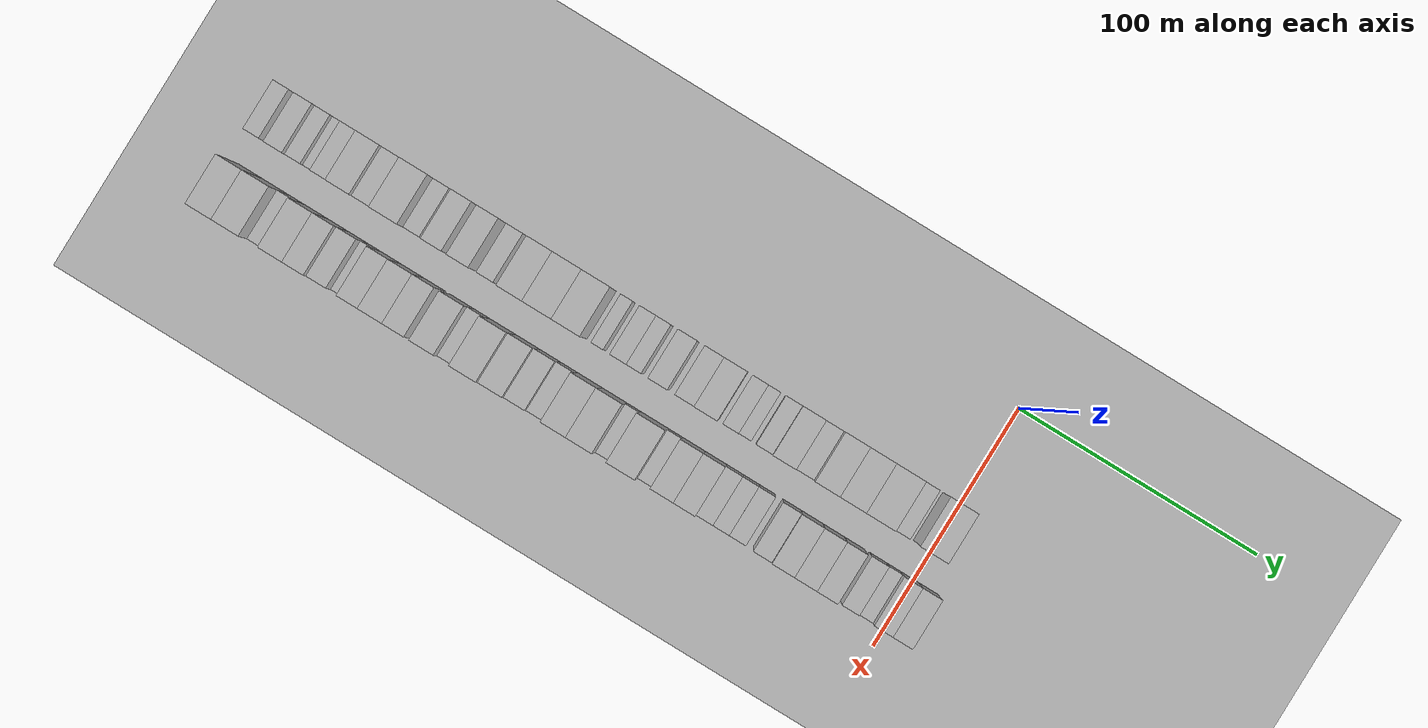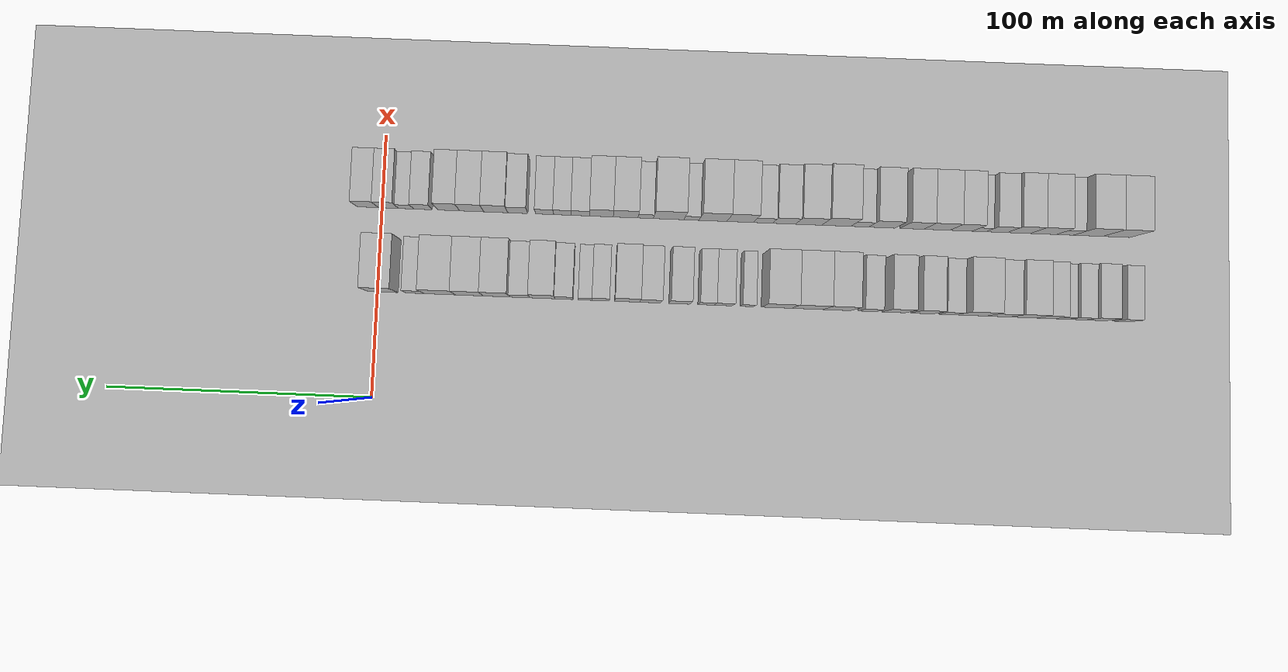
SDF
<sdf version="1.6">
 <world name="default">
  <include><name>ground_plane_1</name><uri>model://HANNAS_ground_plane</uri></include>
  <include>
   <name>ground_plane_2</name>
   <uri>model://HANNAS_ground_plane</uri>
   <pose>100 0 0  0 0 0</pose>
  </include>
  <model name="building_1">
   <static>1</static>
   <pose>50.0000 -280.7641 0 0.000000 0.000000 0.000000</pose>
   <link name="link">
    <pose>0 0 7.50 0 0 0</pose>
    <collision name="collision"><geometry><box><size>20.0000 6.4718 15.0000</size></box></geometry></collision>
    <visual name="visual">
     <cast_shadows>0</cast_shadows>
     <geometry><box><size>20.0000 6.4718 15.0000</size></box></geometry>
     <material>
      <script>
       <uri>model://HANNAS_wall/materials/scripts</uri>
       <uri>model://HANNAS_wall/materials/textures</uri>
       <name>vrc/HANNAS_wall</name>
      </script>
     </material>
    </visual>
   </link>
  </model>
  <model name="building_2">
   <static>1</static>
   <pose>50.0000 -270.7405 0 0.000000 0.000000 0.000000</pose>
   <link name="link">
    <pose>0 0 9.00 0 0 0</pose>
    <collision name="collision"><geometry><box><size>20.0000 7.5755 18.0000</size></box></geometry></collision>
    <visual name="visual">
     <cast_shadows>0</cast_shadows>
     <geometry><box><size>20.0000 7.5755 18.0000</size></box></geometry>
     <material>
      <script>
       <uri>model://HANNAS_wall/materials/scripts</uri>
       <uri>model://HANNAS_wall/materials/textures</uri>
       <name>vrc/HANNAS_wall</name>
      </script>
     </material>
    </visual>
   </link>
  </model>
  <model name="building_3">
   <static>1</static>
   <pose>50.0000 -263.7563 0 0.000000 0.000000 0.000000</pose>
   <link name="link">
    <pose>0 0 7.50 0 0 0</pose>
    <collision name="collision"><geometry><box><size>20.0000 6.3929 15.0000</size></box></geometry></collision>
    <visual name="visual">
     <cast_shadows>0</cast_shadows>
     <geometry><box><size>20.0000 6.3929 15.0000</size></box></geometry>
     <material>
      <script>
       <uri>model://HANNAS_wall/materials/scripts</uri>
       <uri>model://HANNAS_wall/materials/textures</uri>
       <name>vrc/HANNAS_wall</name>
      </script>
     </material>
    </visual>
   </link>
  </model>
  <model name="building_4">
   <static>1</static>
   <pose>50.0000 -258.0644 0 0.000000 0.000000 0.000000</pose>
   <link name="link">
    <pose>0 0 6.00 0 0 0</pose>
    <collision name="collision"><geometry><box><size>20.0000 4.9910 12.0000</size></box></geometry></collision>
    <visual name="visual">
     <cast_shadows>0</cast_shadows>
     <geometry><box><size>20.0000 4.9910 12.0000</size></box></geometry>
     <material>
      <script>
       <uri>model://HANNAS_wall/materials/scripts</uri>
       <uri>model://HANNAS_wall/materials/textures</uri>
       <name>vrc/HANNAS_wall</name>
      </script>
     </material>
    </visual>
   </link>
  </model>
  <model name="building_5">
   <static>1</static>
   <pose>50.0000 -251.9622 0 0.000000 0.000000 0.000000</pose>
   <link name="link">
    <pose>0 0 9.00 0 0 0</pose>
    <collision name="collision"><geometry><box><size>20.0000 7.2133 18.0000</size></box></geometry></collision>
    <visual name="visual">
     <cast_shadows>0</cast_shadows>
     <geometry><box><size>20.0000 7.2133 18.0000</size></box></geometry>
     <material>
      <script>
       <uri>model://HANNAS_wall/materials/scripts</uri>
       <uri>model://HANNAS_wall/materials/textures</uri>
       <name>vrc/HANNAS_wall</name>
      </script>
     </material>
    </visual>
   </link>
  </model>
  <model name="building_6">
   <static>1</static>
   <pose>50.0000 -243.4948 0 0.000000 0.000000 0.000000</pose>
   <link name="link">
    <pose>0 0 10.50 0 0 0</pose>
    <collision name="collision"><geometry><box><size>20.0000 9.7216 21.0000</size></box></geometry></collision>
    <visual name="visual">
     <cast_shadows>0</cast_shadows>
     <geometry><box><size>20.0000 9.7216 21.0000</size></box></geometry>
     <material>
      <script>
       <uri>model://HANNAS_wall/materials/scripts</uri>
       <uri>model://HANNAS_wall/materials/textures</uri>
       <name>vrc/HANNAS_wall</name>
      </script>
     </material>
    </visual>
   </link>
  </model>
  <model name="building_7">
   <static>1</static>
   <pose>50.0000 -234.2494 0 0.000000 0.000000 0.000000</pose>
   <link name="link">
    <pose>0 0 9.00 0 0 0</pose>
    <collision name="collision"><geometry><box><size>20.0000 8.7690 18.0000</size></box></geometry></collision>
    <visual name="visual">
     <cast_shadows>0</cast_shadows>
     <geometry><box><size>20.0000 8.7690 18.0000</size></box></geometry>
     <material>
      <script>
       <uri>model://HANNAS_wall/materials/scripts</uri>
       <uri>model://HANNAS_wall/materials/textures</uri>
       <name>vrc/HANNAS_wall</name>
      </script>
     </material>
    </visual>
   </link>
  </model>
  <model name="building_8">
   <static>1</static>
   <pose>50.0000 -224.1580 0 0.000000 0.000000 0.000000</pose>
   <link name="link">
    <pose>0 0 12.00 0 0 0</pose>
    <collision name="collision"><geometry><box><size>20.0000 11.4138 24.0000</size></box></geometry></collision>
    <visual name="visual">
     <cast_shadows>0</cast_shadows>
     <geometry><box><size>20.0000 11.4138 24.0000</size></box></geometry>
     <material>
      <script>
       <uri>model://HANNAS_wall/materials/scripts</uri>
       <uri>model://HANNAS_wall/materials/textures</uri>
       <name>vrc/HANNAS_wall</name>
      </script>
     </material>
    </visual>
   </link>
  </model>
  <model name="building_9">
   <static>1</static>
   <pose>50.0000 -215.1167 0 0.000000 0.000000 0.000000</pose>
   <link name="link">
    <pose>0 0 7.50 0 0 0</pose>
    <collision name="collision"><geometry><box><size>20.0000 6.6688 15.0000</size></box></geometry></collision>
    <visual name="visual">
     <cast_shadows>0</cast_shadows>
     <geometry><box><size>20.0000 6.6688 15.0000</size></box></geometry>
     <material>
      <script>
       <uri>model://HANNAS_wall/materials/scripts</uri>
       <uri>model://HANNAS_wall/materials/textures</uri>
       <name>vrc/HANNAS_wall</name>
      </script>
     </material>
    </visual>
   </link>
  </model>
  <model name="building_10">
   <static>1</static>
   <pose>50.0000 -205.5650 0 0.000000 0.000000 0.000000</pose>
   <link name="link">
    <pose>0 0 10.50 0 0 0</pose>
    <collision name="collision"><geometry><box><size>20.0000 8.4345 21.0000</size></box></geometry></collision>
    <visual name="visual">
     <cast_shadows>0</cast_shadows>
     <geometry><box><size>20.0000 8.4345 21.0000</size></box></geometry>
     <material>
      <script>
       <uri>model://HANNAS_wall/materials/scripts</uri>
       <uri>model://HANNAS_wall/materials/textures</uri>
       <name>vrc/HANNAS_wall</name>
      </script>
     </material>
    </visual>
   </link>
  </model>
  <model name="building_11">
   <static>1</static>
   <pose>50.0000 -194.9145 0 0.000000 0.000000 0.000000</pose>
   <link name="link">
    <pose>0 0 10.50 0 0 0</pose>
    <collision name="collision"><geometry><box><size>20.0000 8.8665 21.0000</size></box></geometry></collision>
    <visual name="visual">
     <cast_shadows>0</cast_shadows>
     <geometry><box><size>20.0000 8.8665 21.0000</size></box></geometry>
     <material>
      <script>
       <uri>model://HANNAS_wall/materials/scripts</uri>
       <uri>model://HANNAS_wall/materials/textures</uri>
       <name>vrc/HANNAS_wall</name>
      </script>
     </material>
    </visual>
   </link>
  </model>
  <model name="building_12">
   <static>1</static>
   <pose>50.0000 -185.0316 0 0.000000 0.000000 0.000000</pose>
   <link name="link">
    <pose>0 0 7.50 0 0 0</pose>
    <collision name="collision"><geometry><box><size>20.0000 6.8995 15.0000</size></box></geometry></collision>
    <visual name="visual">
     <cast_shadows>0</cast_shadows>
     <geometry><box><size>20.0000 6.8995 15.0000</size></box></geometry>
     <material>
      <script>
       <uri>model://HANNAS_wall/materials/scripts</uri>
       <uri>model://HANNAS_wall/materials/textures</uri>
       <name>vrc/HANNAS_wall</name>
      </script>
     </material>
    </visual>
   </link>
  </model>
  <model name="building_13">
   <static>1</static>
   <pose>50.0000 -173.4004 0 0.000000 0.000000 0.000000</pose>
   <link name="link">
    <pose>0 0 12.00 0 0 0</pose>
    <collision name="collision"><geometry><box><size>20.0000 10.3628 24.0000</size></box></geometry></collision>
    <visual name="visual">
     <cast_shadows>0</cast_shadows>
     <geometry><box><size>20.0000 10.3628 24.0000</size></box></geometry>
     <material>
      <script>
       <uri>model://HANNAS_wall/materials/scripts</uri>
       <uri>model://HANNAS_wall/materials/textures</uri>
       <name>vrc/HANNAS_wall</name>
      </script>
     </material>
    </visual>
   </link>
  </model>
  <model name="building_14">
   <static>1</static>
   <pose>50.0000 -162.3088 0 0.000000 0.000000 0.000000</pose>
   <link name="link">
    <pose>0 0 12.00 0 0 0</pose>
    <collision name="collision"><geometry><box><size>20.0000 11.8206 24.0000</size></box></geometry></collision>
    <visual name="visual">
     <cast_shadows>0</cast_shadows>
     <geometry><box><size>20.0000 11.8206 24.0000</size></box></geometry>
     <material>
      <script>
       <uri>model://HANNAS_wall/materials/scripts</uri>
       <uri>model://HANNAS_wall/materials/textures</uri>
       <name>vrc/HANNAS_wall</name>
      </script>
     </material>
    </visual>
   </link>
  </model>
  <model name="building_15">
   <static>1</static>
   <pose>50.0000 -150.6447 0 0.000000 0.000000 0.000000</pose>
   <link name="link">
    <pose>0 0 12.00 0 0 0</pose>
    <collision name="collision"><geometry><box><size>20.0000 11.5075 24.0000</size></box></geometry></collision>
    <visual name="visual">
     <cast_shadows>0</cast_shadows>
     <geometry><box><size>20.0000 11.5075 24.0000</size></box></geometry>
     <material>
      <script>
       <uri>model://HANNAS_wall/materials/scripts</uri>
       <uri>model://HANNAS_wall/materials/textures</uri>
       <name>vrc/HANNAS_wall</name>
      </script>
     </material>
    </visual>
   </link>
  </model>
  <model name="building_16">
   <static>1</static>
   <pose>50.0000 -139.3656 0 0.000000 0.000000 0.000000</pose>
   <link name="link">
    <pose>0 0 6.00 0 0 0</pose>
    <collision name="collision"><geometry><box><size>20.0000 5.0506 12.0000</size></box></geometry></collision>
    <visual name="visual">
     <cast_shadows>0</cast_shadows>
     <geometry><box><size>20.0000 5.0506 12.0000</size></box></geometry>
     <material>
      <script>
       <uri>model://HANNAS_wall/materials/scripts</uri>
       <uri>model://HANNAS_wall/materials/textures</uri>
       <name>vrc/HANNAS_wall</name>
      </script>
     </material>
    </visual>
   </link>
  </model>
  <model name="building_17">
   <static>1</static>
   <pose>50.0000 -130.4451 0 0.000000 0.000000 0.000000</pose>
   <link name="link">
    <pose>0 0 7.50 0 0 0</pose>
    <collision name="collision"><geometry><box><size>20.0000 6.7904 15.0000</size></box></geometry></collision>
    <visual name="visual">
     <cast_shadows>0</cast_shadows>
     <geometry><box><size>20.0000 6.7904 15.0000</size></box></geometry>
     <material>
      <script>
       <uri>model://HANNAS_wall/materials/scripts</uri>
       <uri>model://HANNAS_wall/materials/textures</uri>
       <name>vrc/HANNAS_wall</name>
      </script>
     </material>
    </visual>
   </link>
  </model>
  <model name="building_18">
   <static>1</static>
   <pose>50.0000 -123.9897 0 0.000000 0.000000 0.000000</pose>
   <link name="link">
    <pose>0 0 7.50 0 0 0</pose>
    <collision name="collision"><geometry><box><size>20.0000 6.1204 15.0000</size></box></geometry></collision>
    <visual name="visual">
     <cast_shadows>0</cast_shadows>
     <geometry><box><size>20.0000 6.1204 15.0000</size></box></geometry>
     <material>
      <script>
       <uri>model://HANNAS_wall/materials/scripts</uri>
       <uri>model://HANNAS_wall/materials/textures</uri>
       <name>vrc/HANNAS_wall</name>
      </script>
     </material>
    </visual>
   </link>
  </model>
  <model name="building_19">
   <static>1</static>
   <pose>50.0000 -113.9621 0 0.000000 0.000000 0.000000</pose>
   <link name="link">
    <pose>0 0 9.00 0 0 0</pose>
    <collision name="collision"><geometry><box><size>20.0000 7.9350 18.0000</size></box></geometry></collision>
    <visual name="visual">
     <cast_shadows>0</cast_shadows>
     <geometry><box><size>20.0000 7.9350 18.0000</size></box></geometry>
     <material>
      <script>
       <uri>model://HANNAS_wall/materials/scripts</uri>
       <uri>model://HANNAS_wall/materials/textures</uri>
       <name>vrc/HANNAS_wall</name>
      </script>
     </material>
    </visual>
   </link>
  </model>
  <model name="building_20">
   <static>1</static>
   <pose>50.0000 -102.9871 0 0.000000 0.000000 0.000000</pose>
   <link name="link">
    <pose>0 0 9.00 0 0 0</pose>
    <collision name="collision"><geometry><box><size>20.0000 8.0151 18.0000</size></box></geometry></collision>
    <visual name="visual">
     <cast_shadows>0</cast_shadows>
     <geometry><box><size>20.0000 8.0151 18.0000</size></box></geometry>
     <material>
      <script>
       <uri>model://HANNAS_wall/materials/scripts</uri>
       <uri>model://HANNAS_wall/materials/textures</uri>
       <name>vrc/HANNAS_wall</name>
      </script>
     </material>
    </visual>
   </link>
  </model>
  <model name="building_21">
   <static>1</static>
   <pose>50.0000 -94.2392 0 0.000000 0.000000 0.000000</pose>
   <link name="link">
    <pose>0 0 10.50 0 0 0</pose>
    <collision name="collision"><geometry><box><size>20.0000 9.4808 21.0000</size></box></geometry></collision>
    <visual name="visual">
     <cast_shadows>0</cast_shadows>
     <geometry><box><size>20.0000 9.4808 21.0000</size></box></geometry>
     <material>
      <script>
       <uri>model://HANNAS_wall/materials/scripts</uri>
       <uri>model://HANNAS_wall/materials/textures</uri>
       <name>vrc/HANNAS_wall</name>
      </script>
     </material>
    </visual>
   </link>
  </model>
  <model name="building_22">
   <static>1</static>
   <pose>50.0000 -84.2171 0 0.000000 0.000000 0.000000</pose>
   <link name="link">
    <pose>0 0 7.50 0 0 0</pose>
    <collision name="collision"><geometry><box><size>20.0000 6.5634 15.0000</size></box></geometry></collision>
    <visual name="visual">
     <cast_shadows>0</cast_shadows>
     <geometry><box><size>20.0000 6.5634 15.0000</size></box></geometry>
     <material>
      <script>
       <uri>model://HANNAS_wall/materials/scripts</uri>
       <uri>model://HANNAS_wall/materials/textures</uri>
       <name>vrc/HANNAS_wall</name>
      </script>
     </material>
    </visual>
   </link>
  </model>
  <model name="building_23">
   <static>1</static>
   <pose>50.0000 -78.3758 0 0.000000 0.000000 0.000000</pose>
   <link name="link">
    <pose>0 0 6.00 0 0 0</pose>
    <collision name="collision"><geometry><box><size>20.0000 5.1192 12.0000</size></box></geometry></collision>
    <visual name="visual">
     <cast_shadows>0</cast_shadows>
     <geometry><box><size>20.0000 5.1192 12.0000</size></box></geometry>
     <material>
      <script>
       <uri>model://HANNAS_wall/materials/scripts</uri>
       <uri>model://HANNAS_wall/materials/textures</uri>
       <name>vrc/HANNAS_wall</name>
      </script>
     </material>
    </visual>
   </link>
  </model>
  <model name="building_24">
   <static>1</static>
   <pose>50.0000 -70.3879 0 0.000000 0.000000 0.000000</pose>
   <link name="link">
    <pose>0 0 7.50 0 0 0</pose>
    <collision name="collision"><geometry><box><size>20.0000 6.8567 15.0000</size></box></geometry></collision>
    <visual name="visual">
     <cast_shadows>0</cast_shadows>
     <geometry><box><size>20.0000 6.8567 15.0000</size></box></geometry>
     <material>
      <script>
       <uri>model://HANNAS_wall/materials/scripts</uri>
       <uri>model://HANNAS_wall/materials/textures</uri>
       <name>vrc/HANNAS_wall</name>
      </script>
     </material>
    </visual>
   </link>
  </model>
  <model name="building_25">
   <static>1</static>
   <pose>50.0000 -62.2291 0 0.000000 0.000000 0.000000</pose>
   <link name="link">
    <pose>0 0 10.50 0 0 0</pose>
    <collision name="collision"><geometry><box><size>20.0000 9.4610 21.0000</size></box></geometry></collision>
    <visual name="visual">
     <cast_shadows>0</cast_shadows>
     <geometry><box><size>20.0000 9.4610 21.0000</size></box></geometry>
     <material>
      <script>
       <uri>model://HANNAS_wall/materials/scripts</uri>
       <uri>model://HANNAS_wall/materials/textures</uri>
       <name>vrc/HANNAS_wall</name>
      </script>
     </material>
    </visual>
   </link>
  </model>
  <model name="building_26">
   <static>1</static>
   <pose>50.0000 -53.7525 0 0.000000 0.000000 0.000000</pose>
   <link name="link">
    <pose>0 0 7.50 0 0 0</pose>
    <collision name="collision"><geometry><box><size>20.0000 7.4922 15.0000</size></box></geometry></collision>
    <visual name="visual">
     <cast_shadows>0</cast_shadows>
     <geometry><box><size>20.0000 7.4922 15.0000</size></box></geometry>
     <material>
      <script>
       <uri>model://HANNAS_wall/materials/scripts</uri>
       <uri>model://HANNAS_wall/materials/textures</uri>
       <name>vrc/HANNAS_wall</name>
      </script>
     </material>
    </visual>
   </link>
  </model>
  <model name="building_27">
   <static>1</static>
   <pose>50.0000 -44.9499 0 0.000000 0.000000 0.000000</pose>
   <link name="link">
    <pose>0 0 12.00 0 0 0</pose>
    <collision name="collision"><geometry><box><size>20.0000 10.1128 24.0000</size></box></geometry></collision>
    <visual name="visual">
     <cast_shadows>0</cast_shadows>
     <geometry><box><size>20.0000 10.1128 24.0000</size></box></geometry>
     <material>
      <script>
       <uri>model://HANNAS_wall/materials/scripts</uri>
       <uri>model://HANNAS_wall/materials/textures</uri>
       <name>vrc/HANNAS_wall</name>
      </script>
     </material>
    </visual>
   </link>
  </model>
  <model name="building_28">
   <static>1</static>
   <pose>50.0000 -34.6139 0 0.000000 0.000000 0.000000</pose>
   <link name="link">
    <pose>0 0 12.00 0 0 0</pose>
    <collision name="collision"><geometry><box><size>20.0000 10.5593 24.0000</size></box></geometry></collision>
    <visual name="visual">
     <cast_shadows>0</cast_shadows>
     <geometry><box><size>20.0000 10.5593 24.0000</size></box></geometry>
     <material>
      <script>
       <uri>model://HANNAS_wall/materials/scripts</uri>
       <uri>model://HANNAS_wall/materials/textures</uri>
       <name>vrc/HANNAS_wall</name>
      </script>
     </material>
    </visual>
   </link>
  </model>
  <model name="building_29">
   <static>1</static>
   <pose>50.0000 -23.3891 0 0.000000 0.000000 0.000000</pose>
   <link name="link">
    <pose>0 0 12.00 0 0 0</pose>
    <collision name="collision"><geometry><box><size>20.0000 11.8902 24.0000</size></box></geometry></collision>
    <visual name="visual">
     <cast_shadows>0</cast_shadows>
     <geometry><box><size>20.0000 11.8902 24.0000</size></box></geometry>
     <material>
      <script>
       <uri>model://HANNAS_wall/materials/scripts</uri>
       <uri>model://HANNAS_wall/materials/textures</uri>
       <name>vrc/HANNAS_wall</name>
      </script>
     </material>
    </visual>
   </link>
  </model>
  <model name="building_30">
   <static>1</static>
   <pose>50.0000 -14.0289 0 0.000000 0.000000 0.000000</pose>
   <link name="link">
    <pose>0 0 7.50 0 0 0</pose>
    <collision name="collision"><geometry><box><size>20.0000 6.8303 15.0000</size></box></geometry></collision>
    <visual name="visual">
     <cast_shadows>0</cast_shadows>
     <geometry><box><size>20.0000 6.8303 15.0000</size></box></geometry>
     <material>
      <script>
       <uri>model://HANNAS_wall/materials/scripts</uri>
       <uri>model://HANNAS_wall/materials/textures</uri>
       <name>vrc/HANNAS_wall</name>
      </script>
     </material>
    </visual>
   </link>
  </model>
  <model name="building_31">
   <static>1</static>
   <pose>50.0000 -1.9353 0 0.000000 0.000000 0.000000</pose>
   <link name="link">
    <pose>0 0 12.00 0 0 0</pose>
    <collision name="collision"><geometry><box><size>20.0000 11.3569 24.0000</size></box></geometry></collision>
    <visual name="visual">
     <cast_shadows>0</cast_shadows>
     <geometry><box><size>20.0000 11.3569 24.0000</size></box></geometry>
     <material>
      <script>
       <uri>model://HANNAS_wall/materials/scripts</uri>
       <uri>model://HANNAS_wall/materials/textures</uri>
       <name>vrc/HANNAS_wall</name>
      </script>
     </material>
    </visual>
   </link>
  </model>
  <model name="building_64">
   <static>1</static>
   <pose>82.0000 -278.7919 0 0.000000 0.000000 0.000000</pose>
   <link name="link">
    <pose>0 0 12.00 0 0 0</pose>
    <collision name="collision"><geometry><box><size>20.0000 10.4161 24.0000</size></box></geometry></collision>
    <visual name="visual">
     <cast_shadows>0</cast_shadows>
     <geometry><box><size>20.0000 10.4161 24.0000</size></box></geometry>
     <material>
      <script>
       <uri>model://HANNAS_wall/materials/scripts</uri>
       <uri>model://HANNAS_wall/materials/textures</uri>
       <name>vrc/HANNAS_wall</name>
      </script>
     </material>
    </visual>
   </link>
  </model>
  <model name="building_65">
   <static>1</static>
   <pose>82.0000 -268.0944 0 0.000000 0.000000 0.000000</pose>
   <link name="link">
    <pose>0 0 12.00 0 0 0</pose>
    <collision name="collision"><geometry><box><size>20.0000 10.9790 24.0000</size></box></geometry></collision>
    <visual name="visual">
     <cast_shadows>0</cast_shadows>
     <geometry><box><size>20.0000 10.9790 24.0000</size></box></geometry>
     <material>
      <script>
       <uri>model://HANNAS_wall/materials/scripts</uri>
       <uri>model://HANNAS_wall/materials/textures</uri>
       <name>vrc/HANNAS_wall</name>
      </script>
     </material>
    </visual>
   </link>
  </model>
  <model name="building_66">
   <static>1</static>
   <pose>82.0000 -259.3315 0 0.000000 0.000000 0.000000</pose>
   <link name="link">
    <pose>0 0 7.50 0 0 0</pose>
    <collision name="collision"><geometry><box><size>20.0000 6.5467 15.0000</size></box></geometry></collision>
    <visual name="visual">
     <cast_shadows>0</cast_shadows>
     <geometry><box><size>20.0000 6.5467 15.0000</size></box></geometry>
     <material>
      <script>
       <uri>model://HANNAS_wall/materials/scripts</uri>
       <uri>model://HANNAS_wall/materials/textures</uri>
       <name>vrc/HANNAS_wall</name>
      </script>
     </material>
    </visual>
   </link>
  </model>
  <model name="building_67">
   <static>1</static>
   <pose>82.0000 -251.1312 0 0.000000 0.000000 0.000000</pose>
   <link name="link">
    <pose>0 0 10.50 0 0 0</pose>
    <collision name="collision"><geometry><box><size>20.0000 9.8540 21.0000</size></box></geometry></collision>
    <visual name="visual">
     <cast_shadows>0</cast_shadows>
     <geometry><box><size>20.0000 9.8540 21.0000</size></box></geometry>
     <material>
      <script>
       <uri>model://HANNAS_wall/materials/scripts</uri>
       <uri>model://HANNAS_wall/materials/textures</uri>
       <name>vrc/HANNAS_wall</name>
      </script>
     </material>
    </visual>
   </link>
  </model>
  <model name="building_68">
   <static>1</static>
   <pose>82.0000 -241.8199 0 0.000000 0.000000 0.000000</pose>
   <link name="link">
    <pose>0 0 10.50 0 0 0</pose>
    <collision name="collision"><geometry><box><size>20.0000 8.7685 21.0000</size></box></geometry></collision>
    <visual name="visual">
     <cast_shadows>0</cast_shadows>
     <geometry><box><size>20.0000 8.7685 21.0000</size></box></geometry>
     <material>
      <script>
       <uri>model://HANNAS_wall/materials/scripts</uri>
       <uri>model://HANNAS_wall/materials/textures</uri>
       <name>vrc/HANNAS_wall</name>
      </script>
     </material>
    </visual>
   </link>
  </model>
  <model name="building_69">
   <static>1</static>
   <pose>82.0000 -233.3877 0 0.000000 0.000000 0.000000</pose>
   <link name="link">
    <pose>0 0 9.00 0 0 0</pose>
    <collision name="collision"><geometry><box><size>20.0000 8.0960 18.0000</size></box></geometry></collision>
    <visual name="visual">
     <cast_shadows>0</cast_shadows>
     <geometry><box><size>20.0000 8.0960 18.0000</size></box></geometry>
     <material>
      <script>
       <uri>model://HANNAS_wall/materials/scripts</uri>
       <uri>model://HANNAS_wall/materials/textures</uri>
       <name>vrc/HANNAS_wall</name>
      </script>
     </material>
    </visual>
   </link>
  </model>
  <model name="building_70">
   <static>1</static>
   <pose>82.0000 -226.7633 0 0.000000 0.000000 0.000000</pose>
   <link name="link">
    <pose>0 0 6.00 0 0 0</pose>
    <collision name="collision"><geometry><box><size>20.0000 5.1528 12.0000</size></box></geometry></collision>
    <visual name="visual">
     <cast_shadows>0</cast_shadows>
     <geometry><box><size>20.0000 5.1528 12.0000</size></box></geometry>
     <material>
      <script>
       <uri>model://HANNAS_wall/materials/scripts</uri>
       <uri>model://HANNAS_wall/materials/textures</uri>
       <name>vrc/HANNAS_wall</name>
      </script>
     </material>
    </visual>
   </link>
  </model>
  <model name="building_71">
   <static>1</static>
   <pose>82.0000 -219.9043 0 0.000000 0.000000 0.000000</pose>
   <link name="link">
    <pose>0 0 10.50 0 0 0</pose>
    <collision name="collision"><geometry><box><size>20.0000 8.5651 21.0000</size></box></geometry></collision>
    <visual name="visual">
     <cast_shadows>0</cast_shadows>
     <geometry><box><size>20.0000 8.5651 21.0000</size></box></geometry>
     <material>
      <script>
       <uri>model://HANNAS_wall/materials/scripts</uri>
       <uri>model://HANNAS_wall/materials/textures</uri>
       <name>vrc/HANNAS_wall</name>
      </script>
     </material>
    </visual>
   </link>
  </model>
  <model name="building_72">
   <static>1</static>
   <pose>82.0000 -210.6769 0 0.000000 0.000000 0.000000</pose>
   <link name="link">
    <pose>0 0 10.50 0 0 0</pose>
    <collision name="collision"><geometry><box><size>20.0000 9.8898 21.0000</size></box></geometry></collision>
    <visual name="visual">
     <cast_shadows>0</cast_shadows>
     <geometry><box><size>20.0000 9.8898 21.0000</size></box></geometry>
     <material>
      <script>
       <uri>model://HANNAS_wall/materials/scripts</uri>
       <uri>model://HANNAS_wall/materials/textures</uri>
       <name>vrc/HANNAS_wall</name>
      </script>
     </material>
    </visual>
   </link>
  </model>
  <model name="building_73">
   <static>1</static>
   <pose>82.0000 -201.2730 0 0.000000 0.000000 0.000000</pose>
   <link name="link">
    <pose>0 0 10.50 0 0 0</pose>
    <collision name="collision"><geometry><box><size>20.0000 8.9179 21.0000</size></box></geometry></collision>
    <visual name="visual">
     <cast_shadows>0</cast_shadows>
     <geometry><box><size>20.0000 8.9179 21.0000</size></box></geometry>
     <material>
      <script>
       <uri>model://HANNAS_wall/materials/scripts</uri>
       <uri>model://HANNAS_wall/materials/textures</uri>
       <name>vrc/HANNAS_wall</name>
      </script>
     </material>
    </visual>
   </link>
  </model>
  <model name="building_74">
   <static>1</static>
   <pose>82.0000 -189.8234 0 0.000000 0.000000 0.000000</pose>
   <link name="link">
    <pose>0 0 10.50 0 0 0</pose>
    <collision name="collision"><geometry><box><size>20.0000 9.9813 21.0000</size></box></geometry></collision>
    <visual name="visual">
     <cast_shadows>0</cast_shadows>
     <geometry><box><size>20.0000 9.9813 21.0000</size></box></geometry>
     <material>
      <script>
       <uri>model://HANNAS_wall/materials/scripts</uri>
       <uri>model://HANNAS_wall/materials/textures</uri>
       <name>vrc/HANNAS_wall</name>
      </script>
     </material>
    </visual>
   </link>
  </model>
  <model name="building_75">
   <static>1</static>
   <pose>82.0000 -181.4269 0 0.000000 0.000000 0.000000</pose>
   <link name="link">
    <pose>0 0 7.50 0 0 0</pose>
    <collision name="collision"><geometry><box><size>20.0000 6.8117 15.0000</size></box></geometry></collision>
    <visual name="visual">
     <cast_shadows>0</cast_shadows>
     <geometry><box><size>20.0000 6.8117 15.0000</size></box></geometry>
     <material>
      <script>
       <uri>model://HANNAS_wall/materials/scripts</uri>
       <uri>model://HANNAS_wall/materials/textures</uri>
       <name>vrc/HANNAS_wall</name>
      </script>
     </material>
    </visual>
   </link>
  </model>
  <model name="building_76">
   <static>1</static>
   <pose>82.0000 -172.5177 0 0.000000 0.000000 0.000000</pose>
   <link name="link">
    <pose>0 0 12.00 0 0 0</pose>
    <collision name="collision"><geometry><box><size>20.0000 11.0067 24.0000</size></box></geometry></collision>
    <visual name="visual">
     <cast_shadows>0</cast_shadows>
     <geometry><box><size>20.0000 11.0067 24.0000</size></box></geometry>
     <material>
      <script>
       <uri>model://HANNAS_wall/materials/scripts</uri>
       <uri>model://HANNAS_wall/materials/textures</uri>
       <name>vrc/HANNAS_wall</name>
      </script>
     </material>
    </visual>
   </link>
  </model>
  <model name="building_77">
   <static>1</static>
   <pose>82.0000 -162.0368 0 0.000000 0.000000 0.000000</pose>
   <link name="link">
    <pose>0 0 10.50 0 0 0</pose>
    <collision name="collision"><geometry><box><size>20.0000 9.9552 21.0000</size></box></geometry></collision>
    <visual name="visual">
     <cast_shadows>0</cast_shadows>
     <geometry><box><size>20.0000 9.9552 21.0000</size></box></geometry>
     <material>
      <script>
       <uri>model://HANNAS_wall/materials/scripts</uri>
       <uri>model://HANNAS_wall/materials/textures</uri>
       <name>vrc/HANNAS_wall</name>
      </script>
     </material>
    </visual>
   </link>
  </model>
  <model name="building_78">
   <static>1</static>
   <pose>82.0000 -152.7214 0 0.000000 0.000000 0.000000</pose>
   <link name="link">
    <pose>0 0 9.00 0 0 0</pose>
    <collision name="collision"><geometry><box><size>20.0000 8.6756 18.0000</size></box></geometry></collision>
    <visual name="visual">
     <cast_shadows>0</cast_shadows>
     <geometry><box><size>20.0000 8.6756 18.0000</size></box></geometry>
     <material>
      <script>
       <uri>model://HANNAS_wall/materials/scripts</uri>
       <uri>model://HANNAS_wall/materials/textures</uri>
       <name>vrc/HANNAS_wall</name>
      </script>
     </material>
    </visual>
   </link>
  </model>
  <model name="building_79">
   <static>1</static>
   <pose>82.0000 -144.7593 0 0.000000 0.000000 0.000000</pose>
   <link name="link">
    <pose>0 0 7.50 0 0 0</pose>
    <collision name="collision"><geometry><box><size>20.0000 7.2486 15.0000</size></box></geometry></collision>
    <visual name="visual">
     <cast_shadows>0</cast_shadows>
     <geometry><box><size>20.0000 7.2486 15.0000</size></box></geometry>
     <material>
      <script>
       <uri>model://HANNAS_wall/materials/scripts</uri>
       <uri>model://HANNAS_wall/materials/textures</uri>
       <name>vrc/HANNAS_wall</name>
      </script>
     </material>
    </visual>
   </link>
  </model>
  <model name="building_80">
   <static>1</static>
   <pose>82.0000 -136.0414 0 0.000000 0.000000 0.000000</pose>
   <link name="link">
    <pose>0 0 12.00 0 0 0</pose>
    <collision name="collision"><geometry><box><size>20.0000 10.1873 24.0000</size></box></geometry></collision>
    <visual name="visual">
     <cast_shadows>0</cast_shadows>
     <geometry><box><size>20.0000 10.1873 24.0000</size></box></geometry>
     <material>
      <script>
       <uri>model://HANNAS_wall/materials/scripts</uri>
       <uri>model://HANNAS_wall/materials/textures</uri>
       <name>vrc/HANNAS_wall</name>
      </script>
     </material>
    </visual>
   </link>
  </model>
  <model name="building_81">
   <static>1</static>
   <pose>82.0000 -125.6295 0 0.000000 0.000000 0.000000</pose>
   <link name="link">
    <pose>0 0 12.00 0 0 0</pose>
    <collision name="collision"><geometry><box><size>20.0000 10.6364 24.0000</size></box></geometry></collision>
    <visual name="visual">
     <cast_shadows>0</cast_shadows>
     <geometry><box><size>20.0000 10.6364 24.0000</size></box></geometry>
     <material>
      <script>
       <uri>model://HANNAS_wall/materials/scripts</uri>
       <uri>model://HANNAS_wall/materials/textures</uri>
       <name>vrc/HANNAS_wall</name>
      </script>
     </material>
    </visual>
   </link>
  </model>
  <model name="building_82">
   <static>1</static>
   <pose>82.0000 -117.4550 0 0.000000 0.000000 0.000000</pose>
   <link name="link">
    <pose>0 0 6.00 0 0 0</pose>
    <collision name="collision"><geometry><box><size>20.0000 5.7126 12.0000</size></box></geometry></collision>
    <visual name="visual">
     <cast_shadows>0</cast_shadows>
     <geometry><box><size>20.0000 5.7126 12.0000</size></box></geometry>
     <material>
      <script>
       <uri>model://HANNAS_wall/materials/scripts</uri>
       <uri>model://HANNAS_wall/materials/textures</uri>
       <name>vrc/HANNAS_wall</name>
      </script>
     </material>
    </visual>
   </link>
  </model>
  <model name="building_83">
   <static>1</static>
   <pose>82.0000 -108.7943 0 0.000000 0.000000 0.000000</pose>
   <link name="link">
    <pose>0 0 12.00 0 0 0</pose>
    <collision name="collision"><geometry><box><size>20.0000 11.6089 24.0000</size></box></geometry></collision>
    <visual name="visual">
     <cast_shadows>0</cast_shadows>
     <geometry><box><size>20.0000 11.6089 24.0000</size></box></geometry>
     <material>
      <script>
       <uri>model://HANNAS_wall/materials/scripts</uri>
       <uri>model://HANNAS_wall/materials/textures</uri>
       <name>vrc/HANNAS_wall</name>
      </script>
     </material>
    </visual>
   </link>
  </model>
  <model name="building_84">
   <static>1</static>
   <pose>82.0000 -100.0545 0 0.000000 0.000000 0.000000</pose>
   <link name="link">
    <pose>0 0 6.00 0 0 0</pose>
    <collision name="collision"><geometry><box><size>20.0000 5.8708 12.0000</size></box></geometry></collision>
    <visual name="visual">
     <cast_shadows>0</cast_shadows>
     <geometry><box><size>20.0000 5.8708 12.0000</size></box></geometry>
     <material>
      <script>
       <uri>model://HANNAS_wall/materials/scripts</uri>
       <uri>model://HANNAS_wall/materials/textures</uri>
       <name>vrc/HANNAS_wall</name>
      </script>
     </material>
    </visual>
   </link>
  </model>
  <model name="building_85">
   <static>1</static>
   <pose>82.0000 -92.4165 0 0.000000 0.000000 0.000000</pose>
   <link name="link">
    <pose>0 0 10.50 0 0 0</pose>
    <collision name="collision"><geometry><box><size>20.0000 9.4053 21.0000</size></box></geometry></collision>
    <visual name="visual">
     <cast_shadows>0</cast_shadows>
     <geometry><box><size>20.0000 9.4053 21.0000</size></box></geometry>
     <material>
      <script>
       <uri>model://HANNAS_wall/materials/scripts</uri>
       <uri>model://HANNAS_wall/materials/textures</uri>
       <name>vrc/HANNAS_wall</name>
      </script>
     </material>
    </visual>
   </link>
  </model>
  <model name="building_86">
   <static>1</static>
   <pose>82.0000 -83.2509 0 0.000000 0.000000 0.000000</pose>
   <link name="link">
    <pose>0 0 10.50 0 0 0</pose>
    <collision name="collision"><geometry><box><size>20.0000 8.9259 21.0000</size></box></geometry></collision>
    <visual name="visual">
     <cast_shadows>0</cast_shadows>
     <geometry><box><size>20.0000 8.9259 21.0000</size></box></geometry>
     <material>
      <script>
       <uri>model://HANNAS_wall/materials/scripts</uri>
       <uri>model://HANNAS_wall/materials/textures</uri>
       <name>vrc/HANNAS_wall</name>
      </script>
     </material>
    </visual>
   </link>
  </model>
  <model name="building_87">
   <static>1</static>
   <pose>82.0000 -75.2861 0 0.000000 0.000000 0.000000</pose>
   <link name="link">
    <pose>0 0 7.50 0 0 0</pose>
    <collision name="collision"><geometry><box><size>20.0000 7.0036 15.0000</size></box></geometry></collision>
    <visual name="visual">
     <cast_shadows>0</cast_shadows>
     <geometry><box><size>20.0000 7.0036 15.0000</size></box></geometry>
     <material>
      <script>
       <uri>model://HANNAS_wall/materials/scripts</uri>
       <uri>model://HANNAS_wall/materials/textures</uri>
       <name>vrc/HANNAS_wall</name>
      </script>
     </material>
    </visual>
   </link>
  </model>
  <model name="building_88">
   <static>1</static>
   <pose>82.0000 -68.4446 0 0.000000 0.000000 0.000000</pose>
   <link name="link">
    <pose>0 0 7.50 0 0 0</pose>
    <collision name="collision"><geometry><box><size>20.0000 6.6795 15.0000</size></box></geometry></collision>
    <visual name="visual">
     <cast_shadows>0</cast_shadows>
     <geometry><box><size>20.0000 6.6795 15.0000</size></box></geometry>
     <material>
      <script>
       <uri>model://HANNAS_wall/materials/scripts</uri>
       <uri>model://HANNAS_wall/materials/textures</uri>
       <name>vrc/HANNAS_wall</name>
      </script>
     </material>
    </visual>
   </link>
  </model>
  <model name="building_89">
   <static>1</static>
   <pose>82.0000 -61.6841 0 0.000000 0.000000 0.000000</pose>
   <link name="link">
    <pose>0 0 7.50 0 0 0</pose>
    <collision name="collision"><geometry><box><size>20.0000 6.8414 15.0000</size></box></geometry></collision>
    <visual name="visual">
     <cast_shadows>0</cast_shadows>
     <geometry><box><size>20.0000 6.8414 15.0000</size></box></geometry>
     <material>
      <script>
       <uri>model://HANNAS_wall/materials/scripts</uri>
       <uri>model://HANNAS_wall/materials/textures</uri>
       <name>vrc/HANNAS_wall</name>
      </script>
     </material>
    </visual>
   </link>
  </model>
  <model name="building_90">
   <static>1</static>
   <pose>82.0000 -51.4665 0 0.000000 0.000000 0.000000</pose>
   <link name="link">
    <pose>0 0 9.00 0 0 0</pose>
    <collision name="collision"><geometry><box><size>20.0000 7.5939 18.0000</size></box></geometry></collision>
    <visual name="visual">
     <cast_shadows>0</cast_shadows>
     <geometry><box><size>20.0000 7.5939 18.0000</size></box></geometry>
     <material>
      <script>
       <uri>model://HANNAS_wall/materials/scripts</uri>
       <uri>model://HANNAS_wall/materials/textures</uri>
       <name>vrc/HANNAS_wall</name>
      </script>
     </material>
    </visual>
   </link>
  </model>
  <model name="building_91">
   <static>1</static>
   <pose>82.0000 -43.0854 0 0.000000 0.000000 0.000000</pose>
   <link name="link">
    <pose>0 0 10.50 0 0 0</pose>
    <collision name="collision"><geometry><box><size>20.0000 9.1684 21.0000</size></box></geometry></collision>
    <visual name="visual">
     <cast_shadows>0</cast_shadows>
     <geometry><box><size>20.0000 9.1684 21.0000</size></box></geometry>
     <material>
      <script>
       <uri>model://HANNAS_wall/materials/scripts</uri>
       <uri>model://HANNAS_wall/materials/textures</uri>
       <name>vrc/HANNAS_wall</name>
      </script>
     </material>
    </visual>
   </link>
  </model>
  <model name="building_92">
   <static>1</static>
   <pose>82.0000 -33.9232 0 0.000000 0.000000 0.000000</pose>
   <link name="link">
    <pose>0 0 10.50 0 0 0</pose>
    <collision name="collision"><geometry><box><size>20.0000 9.1559 21.0000</size></box></geometry></collision>
    <visual name="visual">
     <cast_shadows>0</cast_shadows>
     <geometry><box><size>20.0000 9.1559 21.0000</size></box></geometry>
     <material>
      <script>
       <uri>model://HANNAS_wall/materials/scripts</uri>
       <uri>model://HANNAS_wall/materials/textures</uri>
       <name>vrc/HANNAS_wall</name>
      </script>
     </material>
    </visual>
   </link>
  </model>
  <model name="building_93">
   <static>1</static>
   <pose>82.0000 -25.1346 0 0.000000 0.000000 0.000000</pose>
   <link name="link">
    <pose>0 0 10.50 0 0 0</pose>
    <collision name="collision"><geometry><box><size>20.0000 8.4212 21.0000</size></box></geometry></collision>
    <visual name="visual">
     <cast_shadows>0</cast_shadows>
     <geometry><box><size>20.0000 8.4212 21.0000</size></box></geometry>
     <material>
      <script>
       <uri>model://HANNAS_wall/materials/scripts</uri>
       <uri>model://HANNAS_wall/materials/textures</uri>
       <name>vrc/HANNAS_wall</name>
      </script>
     </material>
    </visual>
   </link>
  </model>
  <model name="building_94">
   <static>1</static>
   <pose>82.0000 -15.3508 0 0.000000 0.000000 0.000000</pose>
   <link name="link">
    <pose>0 0 7.50 0 0 0</pose>
    <collision name="collision"><geometry><box><size>20.0000 7.1466 15.0000</size></box></geometry></collision>
    <visual name="visual">
     <cast_shadows>0</cast_shadows>
     <geometry><box><size>20.0000 7.1466 15.0000</size></box></geometry>
     <material>
      <script>
       <uri>model://HANNAS_wall/materials/scripts</uri>
       <uri>model://HANNAS_wall/materials/textures</uri>
       <name>vrc/HANNAS_wall</name>
      </script>
     </material>
    </visual>
   </link>
  </model>
  <model name="building_95">
   <static>1</static>
   <pose>82.0000 -8.8649 0 0.000000 0.000000 0.000000</pose>
   <link name="link">
    <pose>0 0 6.00 0 0 0</pose>
    <collision name="collision"><geometry><box><size>20.0000 5.8251 12.0000</size></box></geometry></collision>
    <visual name="visual">
     <cast_shadows>0</cast_shadows>
     <geometry><box><size>20.0000 5.8251 12.0000</size></box></geometry>
     <material>
      <script>
       <uri>model://HANNAS_wall/materials/scripts</uri>
       <uri>model://HANNAS_wall/materials/textures</uri>
       <name>vrc/HANNAS_wall</name>
      </script>
     </material>
    </visual>
   </link>
  </model>
  <model name="building_96">
   <static>1</static>
   <pose>82.0000 -2.1464 0 0.000000 0.000000 0.000000</pose>
   <link name="link">
    <pose>0 0 9.00 0 0 0</pose>
    <collision name="collision"><geometry><box><size>20.0000 7.6120 18.0000</size></box></geometry></collision>
    <visual name="visual">
     <cast_shadows>0</cast_shadows>
     <geometry><box><size>20.0000 7.6120 18.0000</size></box></geometry>
     <material>
      <script>
       <uri>model://HANNAS_wall/materials/scripts</uri>
       <uri>model://HANNAS_wall/materials/textures</uri>
       <name>vrc/HANNAS_wall</name>
      </script>
     </material>
    </visual>
   </link>
  </model>
  <model name="building_97">
   <static>1</static>
   <pose>82.0000 5.7058 0 0.000000 0.000000 0.000000</pose>
   <link name="link">
    <pose>0 0 9.00 0 0 0</pose>
    <collision name="collision"><geometry><box><size>20.0000 8.0926 18.0000</size></box></geometry></collision>
    <visual name="visual">
     <cast_shadows>0</cast_shadows>
     <geometry><box><size>20.0000 8.0926 18.0000</size></box></geometry>
     <material>
      <script>
       <uri>model://HANNAS_wall/materials/scripts</uri>
       <uri>model://HANNAS_wall/materials/textures</uri>
       <name>vrc/HANNAS_wall</name>
      </script>
     </material>
    </visual>
   </link>
  </model>
 </world>
</sdf>
